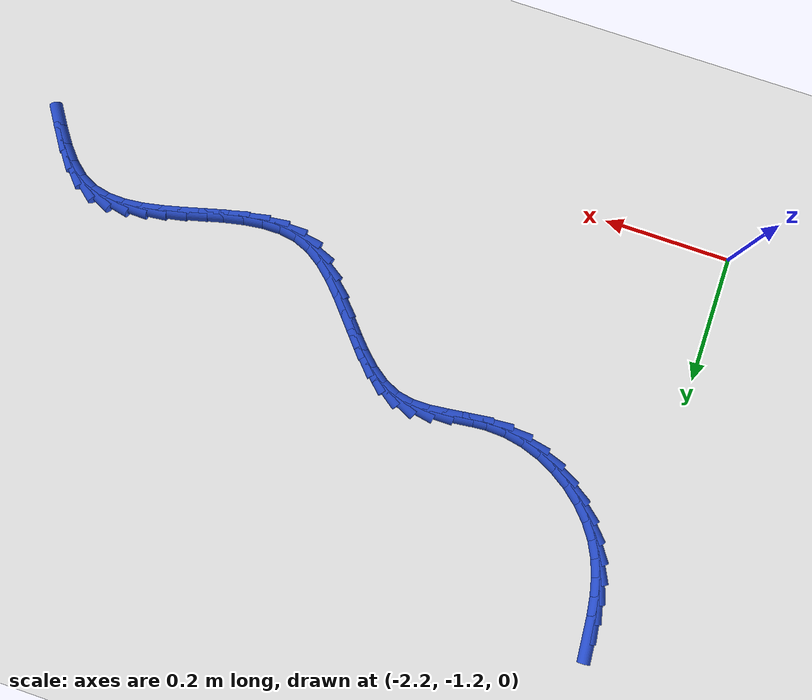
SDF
<sdf version="1.6">
 <world name="default">
  <model name="ground_plane">
   <static>1</static>
   <link name="link">
    <collision name="collision">
     <geometry><plane><normal>0 0 1</normal><size>100 100</size></plane></geometry>
     <surface><friction><ode><mu>100</mu><mu2>50</mu2></ode></friction></surface>
    </collision>
    <visual name="visual">
     <cast_shadows>0</cast_shadows>
     <geometry><plane><normal>0 0 1</normal><size>100 100</size></plane></geometry>
     <material>
      <script><uri>file://media/materials/scripts/gazebo.material</uri><name>Gazebo/WhiteGlow</name></script>
     </material>
    </visual>
   </link>
  </model>
  <model name="line">
   <link name="link_152">
    <pose>-2.1603224263421326 -0.5804606841802646 0.01 0 1.57 -1.4892011366503928</pose>
    <collision name="collision">
     <geometry><cylinder><radius>0.01</radius><length>0.08</length></cylinder></geometry>
    </collision>
    <visual name="visual">
     <material>
      <script><name>Gazebo/Blue</name><uri>file://media/materials/scripts/gazebo.material</uri></script>
     </material>
     <geometry><cylinder><radius>0.01</radius><length>0.08</length></cylinder></geometry>
    </visual>
   </link>
   <link name="link_153">
    <pose>-2.1579001659598727 -0.6100810866685009 0.01 0 1.57 -1.4315057372610216</pose>
    <collision name="collision">
     <geometry><cylinder><radius>0.01</radius><length>0.08</length></cylinder></geometry>
    </collision>
    <visual name="visual">
     <material>
      <script><name>Gazebo/Blue</name><uri>file://media/materials/scripts/gazebo.material</uri></script>
     </material>
     <geometry><cylinder><radius>0.01</radius><length>0.08</length></cylinder></geometry>
    </visual>
   </link>
   <link name="link_154">
    <pose>-2.1538610571620302 -0.6388910218924586 0.01 0 1.57 -1.3481116407836697</pose>
    <collision name="collision">
     <geometry><cylinder><radius>0.01</radius><length>0.08</length></cylinder></geometry>
    </collision>
    <visual name="visual">
     <material>
      <script><name>Gazebo/Blue</name><uri>file://media/materials/scripts/gazebo.material</uri></script>
     </material>
     <geometry><cylinder><radius>0.01</radius><length>0.08</length></cylinder></geometry>
    </visual>
   </link>
   <link name="link_155">
    <pose>-2.1475537363881005 -0.6667452843138811 0.01 0 1.57 -1.2386836956883966</pose>
    <collision name="collision">
     <geometry><cylinder><radius>0.01</radius><length>0.08</length></cylinder></geometry>
    </collision>
    <visual name="visual">
     <material>
      <script><name>Gazebo/Blue</name><uri>file://media/materials/scripts/gazebo.material</uri></script>
     </material>
     <geometry><cylinder><radius>0.01</radius><length>0.08</length></cylinder></geometry>
    </visual>
   </link>
   <link name="link_156">
    <pose>-2.1383268400775797 -0.6934986683945126 0.01 0 1.57 -1.1057669191624406</pose>
    <collision name="collision">
     <geometry><cylinder><radius>0.01</radius><length>0.08</length></cylinder></geometry>
    </collision>
    <visual name="visual">
     <material>
      <script><name>Gazebo/Blue</name><uri>file://media/materials/scripts/gazebo.material</uri></script>
     </material>
     <geometry><cylinder><radius>0.01</radius><length>0.08</length></cylinder></geometry>
    </visual>
   </link>
   <link name="link_157">
    <pose>-2.125529117276288 -0.7190059382439706 0.01 0 1.57 -0.9618263883693599</pose>
    <collision name="collision">
     <geometry><cylinder><radius>0.01</radius><length>0.08</length></cylinder></geometry>
    </collision>
    <visual name="visual">
     <material>
      <script><name>Gazebo/Blue</name><uri>file://media/materials/scripts/gazebo.material</uri></script>
     </material>
     <geometry><cylinder><radius>0.01</radius><length>0.08</length></cylinder></geometry>
    </visual>
   </link>
   <link name="link_158">
    <pose>-2.1087576810741124 -0.7430549134523032 0.01 0 1.57 -0.8276099718651946</pose>
    <collision name="collision">
     <geometry><cylinder><radius>0.01</radius><length>0.08</length></cylinder></geometry>
    </collision>
    <visual name="visual">
     <material>
      <script><name>Gazebo/Blue</name><uri>file://media/materials/scripts/gazebo.material</uri></script>
     </material>
     <geometry><cylinder><radius>0.01</radius><length>0.08</length></cylinder></geometry>
    </visual>
   </link>
   <link name="link_159">
    <pose>-2.0883850278772695 -0.7652244153071279 0.01 0 1.57 -0.7018956021566062</pose>
    <collision name="collision">
     <geometry><cylinder><radius>0.01</radius><length>0.08</length></cylinder></geometry>
    </collision>
    <visual name="visual">
     <material>
      <script><name>Gazebo/Blue</name><uri>file://media/materials/scripts/gazebo.material</uri></script>
     </material>
     <geometry><cylinder><radius>0.01</radius><length>0.08</length></cylinder></geometry>
    </visual>
   </link>
   <link name="link_160">
    <pose>-2.0649345489845663 -0.7850525925980418 0.01 0 1.57 -0.5796609938406133</pose>
    <collision name="collision">
     <geometry><cylinder><radius>0.01</radius><length>0.08</length></cylinder></geometry>
    </collision>
    <visual name="visual">
     <material>
      <script><name>Gazebo/Blue</name><uri>file://media/materials/scripts/gazebo.material</uri></script>
     </material>
     <geometry><cylinder><radius>0.01</radius><length>0.08</length></cylinder></geometry>
    </visual>
   </link>
   <link name="link_161">
    <pose>-2.0389296356948114 -0.802077594114643 0.01 0 1.57 -0.45625846411519605</pose>
    <collision name="collision">
     <geometry><cylinder><radius>0.01</radius><length>0.08</length></cylinder></geometry>
    </collision>
    <visual name="visual">
     <material>
      <script><name>Gazebo/Blue</name><uri>file://media/materials/scripts/gazebo.material</uri></script>
     </material>
     <geometry><cylinder><radius>0.01</radius><length>0.08</length></cylinder></geometry>
    </visual>
   </link>
   <link name="link_162">
    <pose>-2.0108936793068124 -0.8158375686465282 0.01 0 1.57 -0.32738255181279025</pose>
    <collision name="collision">
     <geometry><cylinder><radius>0.01</radius><length>0.08</length></cylinder></geometry>
    </collision>
    <visual name="visual">
     <material>
      <script><name>Gazebo/Blue</name><uri>file://media/materials/scripts/gazebo.material</uri></script>
     </material>
     <geometry><cylinder><radius>0.01</radius><length>0.08</length></cylinder></geometry>
    </visual>
   </link>
   <link name="link_163">
    <pose>-1.981350071119379 -0.8258706649832959 0.01 0 1.57 -0.18915493710510248</pose>
    <collision name="collision">
     <geometry><cylinder><radius>0.01</radius><length>0.08</length></cylinder></geometry>
    </collision>
    <visual name="visual">
     <material>
      <script><name>Gazebo/Blue</name><uri>file://media/materials/scripts/gazebo.material</uri></script>
     </material>
     <geometry><cylinder><radius>0.01</radius><length>0.08</length></cylinder></geometry>
    </visual>
   </link>
   <link name="link_164">
    <pose>-1.9508222024313187 -0.8317150319145429 0.01 0 1.57 -0.04050804441675208</pose>
    <collision name="collision">
     <geometry><cylinder><radius>0.01</radius><length>0.08</length></cylinder></geometry>
    </collision>
    <visual name="visual">
     <material>
      <script><name>Gazebo/Blue</name><uri>file://media/materials/scripts/gazebo.material</uri></script>
     </material>
     <geometry><cylinder><radius>0.01</radius><length>0.08</length></cylinder></geometry>
    </visual>
   </link>
   <link name="link_165">
    <pose>-1.919831547127214 -0.8329710898537935 0.01 0 1.57 0.07774921730053834</pose>
    <collision name="collision">
     <geometry><cylinder><radius>0.01</radius><length>0.08</length></cylinder></geometry>
    </collision>
    <visual name="visual">
     <material>
      <script><name>Gazebo/Blue</name><uri>file://media/materials/scripts/gazebo.material</uri></script>
     </material>
     <geometry><cylinder><radius>0.01</radius><length>0.08</length></cylinder></geometry>
    </visual>
   </link>
   <link name="link_166">
    <pose>-1.8888589694914846 -0.8305581321621893 0.01 0 1.57 0.12725263021647593</pose>
    <collision name="collision">
     <geometry><cylinder><radius>0.01</radius><length>0.08</length></cylinder></geometry>
    </collision>
    <visual name="visual">
     <material>
      <script><name>Gazebo/Blue</name><uri>file://media/materials/scripts/gazebo.material</uri></script>
     </material>
     <geometry><cylinder><radius>0.01</radius><length>0.08</length></cylinder></geometry>
    </visual>
   </link>
   <link name="link_167">
    <pose>-1.8583465738475236 -0.826654254647458 0.01 0 1.57 0.10652782268714761</pose>
    <collision name="collision">
     <geometry><cylinder><radius>0.01</radius><length>0.08</length></cylinder></geometry>
    </collision>
    <visual name="visual">
     <material>
      <script><name>Gazebo/Blue</name><uri>file://media/materials/scripts/gazebo.material</uri></script>
     </material>
     <geometry><cylinder><radius>0.01</radius><length>0.08</length></cylinder></geometry>
    </visual>
   </link>
   <link name="link_168">
    <pose>-1.828734917284353 -0.8234878024560741 0.01 0 1.57 0.00709854236100911</pose>
    <collision name="collision">
     <geometry><cylinder><radius>0.01</radius><length>0.08</length></cylinder></geometry>
    </collision>
    <visual name="visual">
     <material>
      <script><name>Gazebo/Blue</name><uri>file://media/materials/scripts/gazebo.material</uri></script>
     </material>
     <geometry><cylinder><radius>0.01</radius><length>0.08</length></cylinder></geometry>
    </visual>
   </link>
   <link name="link_169">
    <pose>-1.800464556890997 -0.8232871207345122 0.01 0 1.57 -0.18610434891363123</pose>
    <collision name="collision">
     <geometry><cylinder><radius>0.01</radius><length>0.08</length></cylinder></geometry>
    </collision>
    <visual name="visual">
     <material>
      <script><name>Gazebo/Blue</name><uri>file://media/materials/scripts/gazebo.material</uri></script>
     </material>
     <geometry><cylinder><radius>0.01</radius><length>0.08</length></cylinder></geometry>
    </visual>
   </link>
   <link name="link_170">
    <pose>-1.7739746257327467 -0.8282747271521729 0.01 0 1.57 -0.43358458510615383</pose>
    <collision name="collision">
     <geometry><cylinder><radius>0.01</radius><length>0.08</length></cylinder></geometry>
    </collision>
    <visual name="visual">
     <material>
      <script><name>Gazebo/Blue</name><uri>file://media/materials/scripts/gazebo.material</uri></script>
     </material>
     <geometry><cylinder><radius>0.01</radius><length>0.08</length></cylinder></geometry>
    </visual>
   </link>
   <link name="link_171">
    <pose>-1.7494491568086004 -0.8396292032724616 0.01 0 1.57 -0.6283946000347742</pose>
    <collision name="collision">
     <geometry><cylinder><radius>0.01</radius><length>0.08</length></cylinder></geometry>
    </collision>
    <visual name="visual">
     <material>
      <script><name>Gazebo/Blue</name><uri>file://media/materials/scripts/gazebo.material</uri></script>
     </material>
     <geometry><cylinder><radius>0.01</radius><length>0.08</length></cylinder></geometry>
    </visual>
   </link>
   <link name="link_172">
    <pose>-1.7265244455552833 -0.8562876454793842 0.01 0 1.57 -0.7582804109089774</pose>
    <collision name="collision">
     <geometry><cylinder><radius>0.01</radius><length>0.08</length></cylinder></geometry>
    </collision>
    <visual name="visual">
     <material>
      <script><name>Gazebo/Blue</name><uri>file://media/materials/scripts/gazebo.material</uri></script>
     </material>
     <geometry><cylinder><radius>0.01</radius><length>0.08</length></cylinder></geometry>
    </visual>
   </link>
   <link name="link_173">
    <pose>-1.704765885529279 -0.8768970011427001 0.01 0 1.57 -0.834645958524055</pose>
    <collision name="collision">
     <geometry><cylinder><radius>0.01</radius><length>0.08</length></cylinder></geometry>
    </collision>
    <visual name="visual">
     <material>
      <script><name>Gazebo/Blue</name><uri>file://media/materials/scripts/gazebo.material</uri></script>
     </material>
     <geometry><cylinder><radius>0.01</radius><length>0.08</length></cylinder></geometry>
    </visual>
   </link>
   <link name="link_174">
    <pose>-1.6837388702870704 -0.9001042176321711 0.01 0 1.57 -0.8675891823902666</pose>
    <collision name="collision">
     <geometry><cylinder><radius>0.01</radius><length>0.08</length></cylinder></geometry>
    </collision>
    <visual name="visual">
     <material>
      <script><name>Gazebo/Blue</name><uri>file://media/materials/scripts/gazebo.material</uri></script>
     </material>
     <geometry><cylinder><radius>0.01</radius><length>0.08</length></cylinder></geometry>
    </visual>
   </link>
   <link name="link_175">
    <pose>-1.6630087933851387 -0.9245562423175578 0.01 0 1.57 -0.8621310390201661</pose>
    <collision name="collision">
     <geometry><cylinder><radius>0.01</radius><length>0.08</length></cylinder></geometry>
    </collision>
    <visual name="visual">
     <material>
      <script><name>Gazebo/Blue</name><uri>file://media/materials/scripts/gazebo.material</uri></script>
     </material>
     <geometry><cylinder><radius>0.01</radius><length>0.08</length></cylinder></geometry>
    </visual>
   </link>
   <link name="link_176">
    <pose>-1.6421410483799677 -0.9489000225686209 0.01 0 1.57 -0.8179314050404043</pose>
    <collision name="collision">
     <geometry><cylinder><radius>0.01</radius><length>0.08</length></cylinder></geometry>
    </collision>
    <visual name="visual">
     <material>
      <script><name>Gazebo/Blue</name><uri>file://media/materials/scripts/gazebo.material</uri></script>
     </material>
     <geometry><cylinder><radius>0.01</radius><length>0.08</length></cylinder></geometry>
    </visual>
   </link>
   <link name="link_177">
    <pose>-1.6207010288280392 -0.9717825057551214 0.01 0 1.57 -0.7295052425923582</pose>
    <collision name="collision">
     <geometry><cylinder><radius>0.01</radius><length>0.08</length></cylinder></geometry>
    </collision>
    <visual name="visual">
     <material>
      <script><name>Gazebo/Blue</name><uri>file://media/materials/scripts/gazebo.material</uri></script>
     </material>
     <geometry><cylinder><radius>0.01</radius><length>0.08</length></cylinder></geometry>
    </visual>
   </link>
   <link name="link_178">
    <pose>-1.5982541282858358 -0.9918506392468202 0.01 0 1.57 -0.58728176783662</pose>
    <collision name="collision">
     <geometry><cylinder><radius>0.01</radius><length>0.08</length></cylinder></geometry>
    </collision>
    <visual name="visual">
     <material>
      <script><name>Gazebo/Blue</name><uri>file://media/materials/scripts/gazebo.material</uri></script>
     </material>
     <geometry><cylinder><radius>0.01</radius><length>0.08</length></cylinder></geometry>
    </visual>
   </link>
   <link name="link_179">
    <pose>-1.5743657403098403 -1.0077513704134777 0.01 0 1.57 -0.38402484279725535</pose>
    <collision name="collision">
     <geometry><cylinder><radius>0.01</radius><length>0.08</length></cylinder></geometry>
    </collision>
    <visual name="visual">
     <material>
      <script><name>Gazebo/Blue</name><uri>file://media/materials/scripts/gazebo.material</uri></script>
     </material>
     <geometry><cylinder><radius>0.01</radius><length>0.08</length></cylinder></geometry>
    </visual>
   </link>
   <link name="link_180">
    <pose>-1.5486103449663529 -1.0181587957275127 0.01 0 1.57 -0.16490204636862596</pose>
    <collision name="collision">
     <geometry><cylinder><radius>0.01</radius><length>0.08</length></cylinder></geometry>
    </collision>
    <visual name="visual">
     <material>
      <script><name>Gazebo/Blue</name><uri>file://media/materials/scripts/gazebo.material</uri></script>
     </material>
     <geometry><cylinder><radius>0.01</radius><length>0.08</length></cylinder></geometry>
    </visual>
   </link>
   <link name="link_181">
    <pose>-1.5209046034880866 -1.022769396691524 0.01 0 1.57 0.006157676759871229</pose>
    <collision name="collision">
     <geometry><cylinder><radius>0.01</radius><length>0.08</length></cylinder></geometry>
    </collision>
    <visual name="visual">
     <material>
      <script><name>Gazebo/Blue</name><uri>file://media/materials/scripts/gazebo.material</uri></script>
     </material>
     <geometry><cylinder><radius>0.01</radius><length>0.08</length></cylinder></geometry>
    </visual>
   </link>
   <link name="link_182">
    <pose>-1.4916033896817407 -1.022588967007777 0.01 0 1.57 0.12648045074822759</pose>
    <collision name="collision">
     <geometry><cylinder><radius>0.01</radius><length>0.08</length></cylinder></geometry>
    </collision>
    <visual name="visual">
     <material>
      <script><name>Gazebo/Blue</name><uri>file://media/materials/scripts/gazebo.material</uri></script>
     </material>
     <geometry><cylinder><radius>0.01</radius><length>0.08</length></cylinder></geometry>
    </visual>
   </link>
   <link name="link_183">
    <pose>-1.461090239299779 -1.0187089378921192 0.01 0 1.57 0.20413236182553965</pose>
    <collision name="collision">
     <geometry><cylinder><radius>0.01</radius><length>0.08</length></cylinder></geometry>
    </collision>
    <visual name="visual">
     <material>
      <script><name>Gazebo/Blue</name><uri>file://media/materials/scripts/gazebo.material</uri></script>
     </material>
     <geometry><cylinder><radius>0.01</radius><length>0.08</length></cylinder></geometry>
    </visual>
   </link>
   <link name="link_184">
    <pose>-1.4297486880946655 -1.0122207405603985 0.01 0 1.57 0.2467050396367027</pose>
    <collision name="collision">
     <geometry><cylinder><radius>0.01</radius><length>0.08</length></cylinder></geometry>
    </collision>
    <visual name="visual">
     <material>
      <script><name>Gazebo/Blue</name><uri>file://media/materials/scripts/gazebo.material</uri></script>
     </material>
     <geometry><cylinder><radius>0.01</radius><length>0.08</length></cylinder></geometry>
    </visual>
   </link>
   <link name="link_185">
    <pose>-1.397962271818864 -1.0042158062284605 0.01 0 1.57 0.2587695573664941</pose>
    <collision name="collision">
     <geometry><cylinder><radius>0.01</radius><length>0.08</length></cylinder></geometry>
    </collision>
    <visual name="visual">
     <material>
      <script><name>Gazebo/Blue</name><uri>file://media/materials/scripts/gazebo.material</uri></script>
     </material>
     <geometry><cylinder><radius>0.01</radius><length>0.08</length></cylinder></geometry>
    </visual>
   </link>
   <link name="link_186">
    <pose>-1.3661145262248375 -0.9957855661121532 0.01 0 1.57 0.2414745803139034</pose>
    <collision name="collision">
     <geometry><cylinder><radius>0.01</radius><length>0.08</length></cylinder></geometry>
    </collision>
    <visual name="visual">
     <material>
      <script><name>Gazebo/Blue</name><uri>file://media/materials/scripts/gazebo.material</uri></script>
     </material>
     <geometry><cylinder><radius>0.01</radius><length>0.08</length></cylinder></geometry>
    </visual>
   </link>
   <link name="link_187">
    <pose>-1.3345889870650502 -0.9880214514273229 0.01 0 1.57 0.19248004953925194</pose>
    <collision name="collision">
     <geometry><cylinder><radius>0.01</radius><length>0.08</length></cylinder></geometry>
    </collision>
    <visual name="visual">
     <material>
      <script><name>Gazebo/Blue</name><uri>file://media/materials/scripts/gazebo.material</uri></script>
     </material>
     <geometry><cylinder><radius>0.01</radius><length>0.08</length></cylinder></geometry>
    </visual>
   </link>
   <link name="link_188">
    <pose>-1.303769190091965 -0.9820148933898167 0.01 0 1.57 0.10580971140531287</pose>
    <collision name="collision">
     <geometry><cylinder><radius>0.01</radius><length>0.08</length></cylinder></geometry>
    </collision>
    <visual name="visual">
     <material>
      <script><name>Gazebo/Blue</name><uri>file://media/materials/scripts/gazebo.material</uri></script>
     </material>
     <geometry><cylinder><radius>0.01</radius><length>0.08</length></cylinder></geometry>
    </visual>
   </link>
   <link name="link_189">
    <pose>-1.2740386710580478 -0.9788573232154821 0.01 0 1.57 -0.027696824877279744</pose>
    <collision name="collision">
     <geometry><cylinder><radius>0.01</radius><length>0.08</length></cylinder></geometry>
    </collision>
    <visual name="visual">
     <material>
      <script><name>Gazebo/Blue</name><uri>file://media/materials/scripts/gazebo.material</uri></script>
     </material>
     <geometry><cylinder><radius>0.01</radius><length>0.08</length></cylinder></geometry>
    </visual>
   </link>
   <link name="link_190">
    <pose>-1.2457809657157612 -0.9796401721201657 0.01 0 1.57 -0.2167815465029809</pose>
    <collision name="collision">
     <geometry><cylinder><radius>0.01</radius><length>0.08</length></cylinder></geometry>
    </collision>
    <visual name="visual">
     <material>
      <script><name>Gazebo/Blue</name><uri>file://media/materials/scripts/gazebo.material</uri></script>
     </material>
     <geometry><cylinder><radius>0.01</radius><length>0.08</length></cylinder></geometry>
    </visual>
   </link>
   <link name="link_191">
    <pose>-1.2193796098175693 -0.9854548713197147 0.01 0 1.57 -0.4586671951842201</pose>
    <collision name="collision">
     <geometry><cylinder><radius>0.01</radius><length>0.08</length></cylinder></geometry>
    </collision>
    <visual name="visual">
     <material>
      <script><name>Gazebo/Blue</name><uri>file://media/materials/scripts/gazebo.material</uri></script>
     </material>
     <geometry><cylinder><radius>0.01</radius><length>0.08</length></cylinder></geometry>
    </visual>
   </link>
   <link name="link_192">
    <pose>-1.1952160611093061 -0.9973865875191852 0.01 0 1.57 -0.6969884481042025</pose>
    <collision name="collision">
     <geometry><cylinder><radius>0.01</radius><length>0.08</length></cylinder></geometry>
    </collision>
    <visual name="visual">
     <material>
      <script><name>Gazebo/Blue</name><uri>file://media/materials/scripts/gazebo.material</uri></script>
     </material>
     <geometry><cylinder><radius>0.01</radius><length>0.08</length></cylinder></geometry>
    </visual>
   </link>
   <link name="link_193">
    <pose>-1.173386709514456 -1.01566110111361 0.01 0 1.57 -0.8582599160691113</pose>
    <collision name="collision">
     <geometry><cylinder><radius>0.01</radius><length>0.08</length></cylinder></geometry>
    </collision>
    <visual name="visual">
     <material>
      <script><name>Gazebo/Blue</name><uri>file://media/materials/scripts/gazebo.material</uri></script>
     </material>
     <geometry><cylinder><radius>0.01</radius><length>0.08</length></cylinder></geometry>
    </visual>
   </link>
   <link name="link_194">
    <pose>-1.1534152229760626 -1.0387776229210681 0.01 0 1.57 -0.9528785632801751</pose>
    <collision name="collision">
     <geometry><cylinder><radius>0.01</radius><length>0.08</length></cylinder></geometry>
    </collision>
    <visual name="visual">
     <material>
      <script><name>Gazebo/Blue</name><uri>file://media/materials/scripts/gazebo.material</uri></script>
     </material>
     <geometry><cylinder><radius>0.01</radius><length>0.08</length></cylinder></geometry>
    </visual>
   </link>
   <link name="link_195">
    <pose>-1.134756724199636 -1.065028722272474 0.01 0 1.57 -0.9969771782220367</pose>
    <collision name="collision">
     <geometry><cylinder><radius>0.01</radius><length>0.08</length></cylinder></geometry>
    </collision>
    <visual name="visual">
     <material>
      <script><name>Gazebo/Blue</name><uri>file://media/materials/scripts/gazebo.material</uri></script>
     </material>
     <geometry><cylinder><radius>0.01</radius><length>0.08</length></cylinder></geometry>
    </visual>
   </link>
  </model>
 </world>
</sdf>
